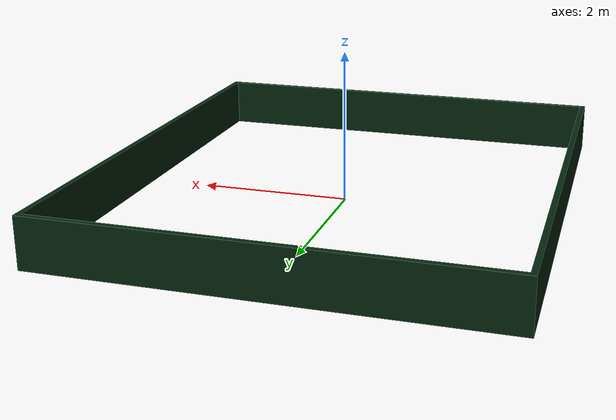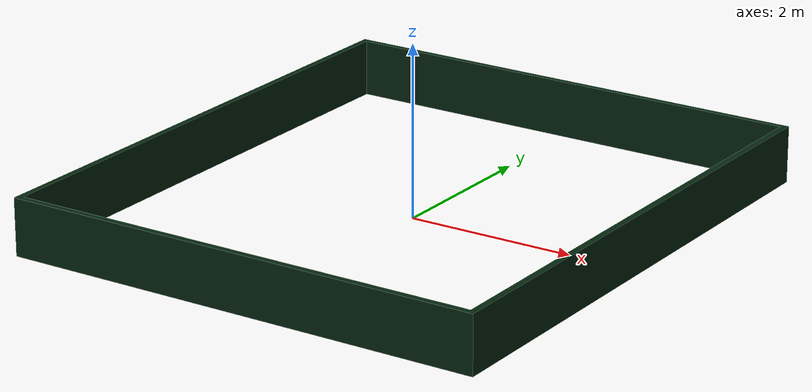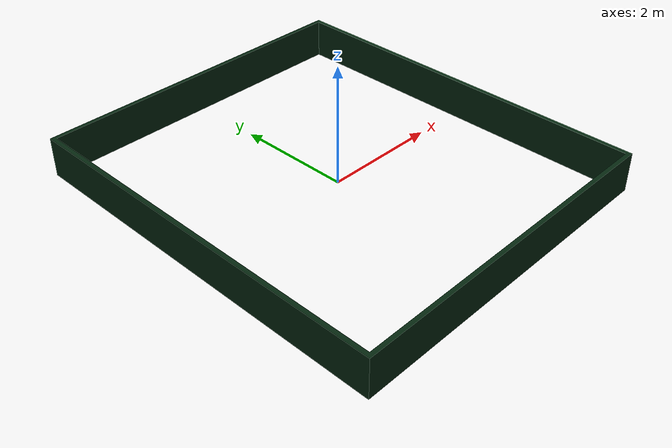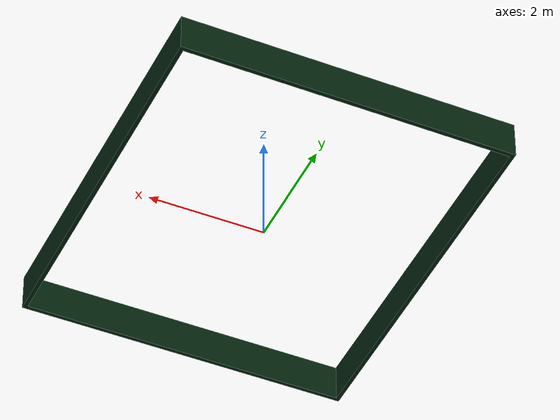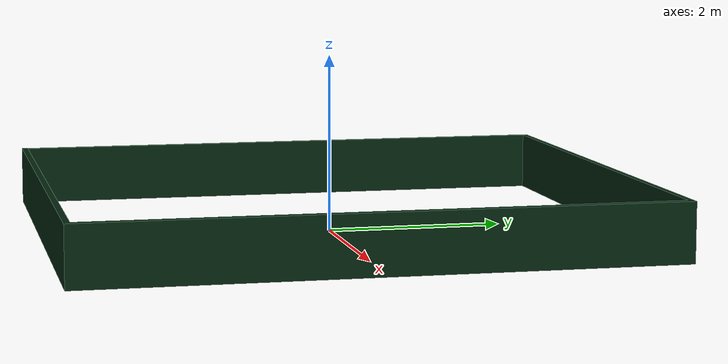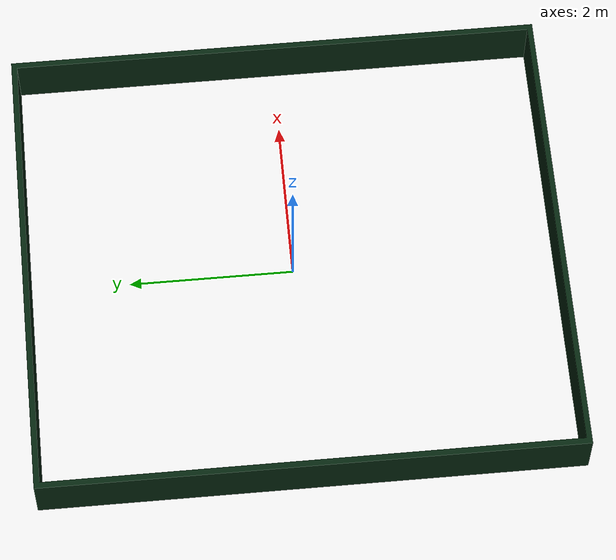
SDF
<?xml version="1.0" ?>
<sdf version="1.8">
  <model name="Walls">
    <static>true</static>
    <link name="Walls">
      <visual name="visual">
        <geometry>
          <mesh>
            <uri>model://YahboomTrack/Walls/meshes/Walls.dae</uri>
            <scale>2.0 2.0 2.0</scale>
          </mesh>
        </geometry>
      </visual>
      <collision name="visual">
        <geometry>
          <mesh>
            <uri>model://YahboomTrack/Walls/meshes/Walls.dae</uri>
            <scale>2.0 2.0 2.0</scale>
          </mesh>
        </geometry>
      </collision>
    </link>
  </model>
</sdf>
